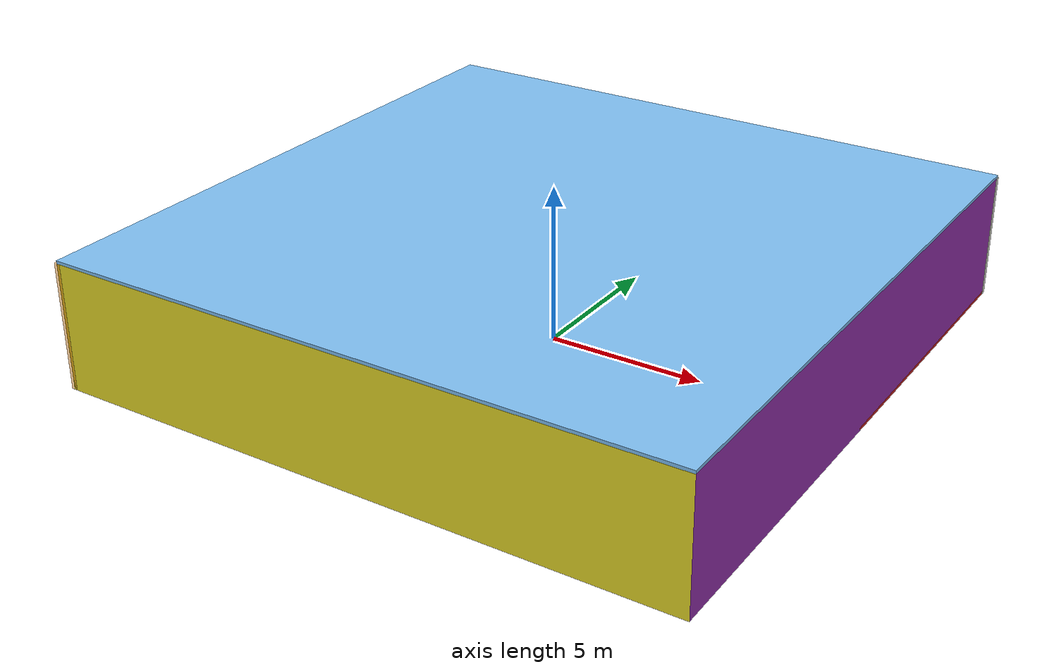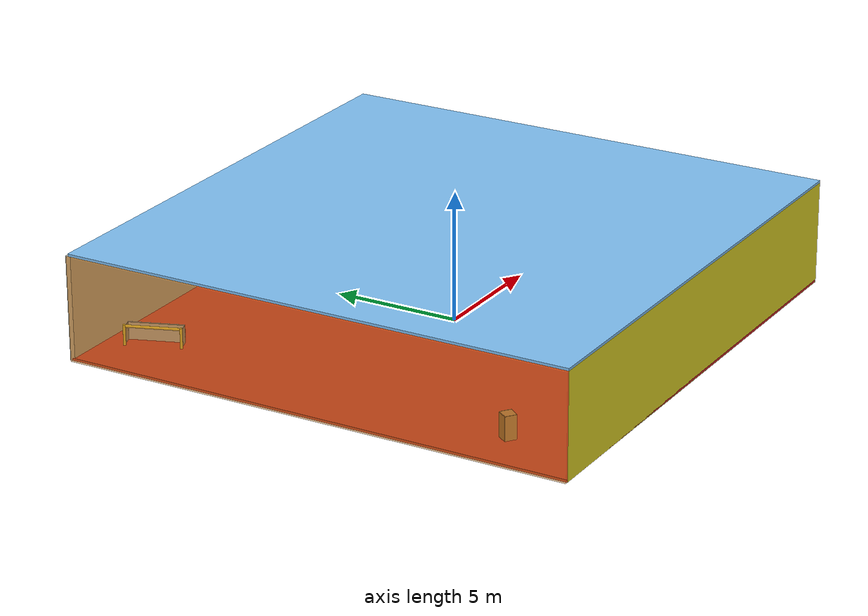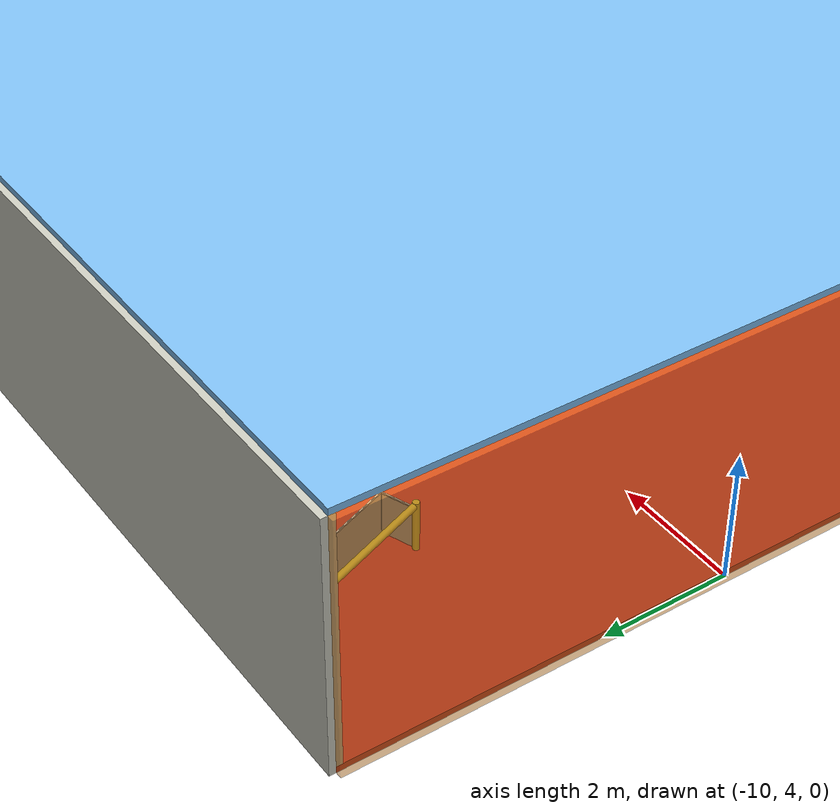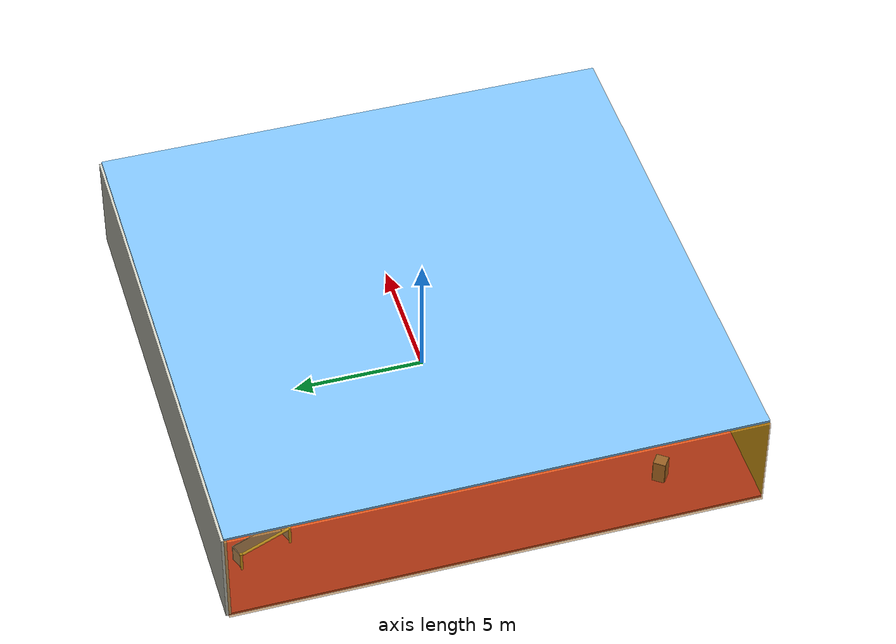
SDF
<sdf version="1.4">
 <world name="default">
  <physics type="ode">
   <max_step_size>0.001</max_step_size>
   <real_time_factor>1</real_time_factor>
   <real_time_update_rate>1000</real_time_update_rate>
   <gravity>0 0 -9.8</gravity>
  </physics>
  <scene><ambient>0.4 0.4 0.4 1</ambient><background>0.7 0.7 0.7 1</background><shadows>1</shadows></scene>
  <model name="Surrounding">
   <static>1</static>
   <link name="Ceiling">
    <collision name="Ceiling_Collision"><geometry><box><size>20 20 0.1</size></box></geometry></collision>
    <visual name="Ceiling_Visual">
     <geometry><box><size>20 20 0.1</size></box></geometry>
     <material>
      <script><uri>file://media/materials/scripts/gazebo.material</uri><name>Gazebo/SkyBlue</name></script>
     </material>
    </visual>
    <pose>0 0 4.05 0 0 0</pose>
   </link>
   <link name="Wall_South">
    <collision name="Wall_South_Collision">
     <geometry><box><size>20 0 4</size></box></geometry>
     <pose>0 0 2 0 -0 0</pose>
    </collision>
    <visual name="Wall_South_Visual">
     <pose>0 0 2 0 -0 0</pose>
     <geometry><box><size>20 0 4</size></box></geometry>
     <material>
      <script><uri>file://media/materials/scripts/gazebo.material</uri><name>Gazebo/Yellow</name></script>
     </material>
    </visual>
    <velocity_decay><linear>0</linear><angular>0</angular></velocity_decay>
    <pose>0 -10 0 0 -0 0</pose>
   </link>
   <link name="Wall_East">
    <collision name="Wall_21_Collision">
     <geometry><box><size>20 0 4</size></box></geometry>
     <pose>0 0 2 0 -0 0</pose>
    </collision>
    <visual name="Wall_21_Visual">
     <pose>0 0 2 0 -0 0</pose>
     <geometry><box><size>20 0 4</size></box></geometry>
     <material>
      <script><uri>file://media/materials/scripts/gazebo.material</uri><name>Gazebo/PurpleGlow</name></script>
     </material>
    </visual>
    <velocity_decay><linear>0</linear><angular>0</angular></velocity_decay>
    <pose>10 0 0 0 -0 1.5708</pose>
   </link>
   <link name="Wall_North">
    <collision name="Wall_22_Collision">
     <geometry><box><size>20 0.2 4</size></box></geometry>
     <pose>0 0 2 0 -0 0</pose>
    </collision>
    <visual name="Wall_22_Visual">
     <pose>0 0 2 0 -0 0</pose>
     <geometry><box><size>20 0.2 4</size></box></geometry>
     <material>
      <script><uri>file://media/materials/scripts/gazebo.material</uri><name>Gazebo/PaintedWall</name></script>
     </material>
    </visual>
    <velocity_decay><linear>0</linear><angular>0</angular></velocity_decay>
    <pose>0 10 0 0 -0 0</pose>
   </link>
   <link name="Wall_West">
    <collision name="Wall_23_Collision">
     <geometry><box><size>20 0.2 4</size></box></geometry>
     <pose>0 0 2 0 -0 0</pose>
    </collision>
    <visual name="Wall_23_Visual">
     <pose>0 0 2 0 -0 0</pose>
     <geometry><box><size>20 0.2 4</size></box></geometry>
     <material>
      <script>
       <uri>file://media/materials/scripts/gazebo.material</uri>
       <name>Gazebo/OrangeTransparent</name>
      </script>
     </material>
    </visual>
    <velocity_decay><linear>0</linear><angular>0</angular></velocity_decay>
    <pose>-10 0 0 0 0 -1.5708</pose>
   </link>
   <link name="Ground_link">
    <collision name="collision">
     <pose>0 0 .05 0 -0 0</pose>
     <geometry><box><size>20 20 0.1</size></box></geometry>
    </collision>
    <visual name="visual">
     <pose>0 0 .05 0 -0 0</pose>
     <geometry><box><size>20 20 0.1</size></box></geometry>
     <material>
      <script><uri>file://media/materials/scripts/gazebo.material</uri><name>Gazebo/RedGlow</name></script>
     </material>
    </visual>
   </link>
   <static>1</static>
  </model>
  <spherical_coordinates>
   <surface_model>EARTH_WGS84</surface_model>
   <latitude_deg>0</latitude_deg>
   <longitude_deg>0</longitude_deg>
   <elevation>0</elevation>
   <heading_deg>0</heading_deg>
  </spherical_coordinates>
  <light name="lightball_0" type="diffuse">
   <diffuse>0.8 0.8 0.8 1</diffuse>
   <specular>0.2 0.2 0.2 1</specular>
   <attenuation>
    <range>100</range>
    <constant>0.7</constant>
    <linear>0.01</linear>
    <quadratic>0.001</quadratic>
   </attenuation>
   <direction>-0.5 0.1 -0.9</direction>
   <pose>3.0337023863 -3.57219949909 2.36994010567 0 0 0</pose>
  </light>
  <light name="lightball_1" type="diffuse">
   <diffuse>0.8 0.8 0.8 1</diffuse>
   <specular>0.2 0.2 0.2 1</specular>
   <attenuation>
    <range>100</range>
    <constant>0.7</constant>
    <linear>0.01</linear>
    <quadratic>0.001</quadratic>
   </attenuation>
   <direction>-0.5 0.1 -0.9</direction>
   <pose>-5.52729497936 9.5893725143 2.87252874271 0 0 0</pose>
  </light>
  <light name="lightball_2" type="diffuse">
   <diffuse>0.8 0.8 0.8 1</diffuse>
   <specular>0.2 0.2 0.2 1</specular>
   <attenuation>
    <range>100</range>
    <constant>0.7</constant>
    <linear>0.01</linear>
    <quadratic>0.001</quadratic>
   </attenuation>
   <direction>-0.5 0.1 -0.9</direction>
   <pose>2.2619710281 -4.76720985842 0.790946564178 0 0 0</pose>
  </light>
  <light name="lightball_3" type="diffuse">
   <diffuse>0.8 0.8 0.8 1</diffuse>
   <specular>0.2 0.2 0.2 1</specular>
   <attenuation>
    <range>100</range>
    <constant>0.7</constant>
    <linear>0.01</linear>
    <quadratic>0.001</quadratic>
   </attenuation>
   <direction>-0.5 0.1 -0.9</direction>
   <pose>-2.34306392307 -3.66165277192 2.21661927944 0 0 0</pose>
  </light>
  <light name="lightball_4" type="diffuse">
   <diffuse>0.8 0.8 0.8 1</diffuse>
   <specular>0.2 0.2 0.2 1</specular>
   <attenuation>
    <range>100</range>
    <constant>0.7</constant>
    <linear>0.01</linear>
    <quadratic>0.001</quadratic>
   </attenuation>
   <direction>-0.5 0.1 -0.9</direction>
   <pose>1.48796182923 9.49133864271 2.45561989913 0 0 0</pose>
  </light>
  <light name="lightball_5" type="diffuse">
   <diffuse>0.8 0.8 0.8 1</diffuse>
   <specular>0.2 0.2 0.2 1</specular>
   <attenuation>
    <range>100</range>
    <constant>0.7</constant>
    <linear>0.01</linear>
    <quadratic>0.001</quadratic>
   </attenuation>
   <direction>-0.5 0.1 -0.9</direction>
   <pose>-6.1392224588 4.35477330142 3.38184089092 0 0 0</pose>
  </light>
  <light name="lightball_6" type="diffuse">
   <diffuse>0.8 0.8 0.8 1</diffuse>
   <specular>0.2 0.2 0.2 1</specular>
   <attenuation>
    <range>100</range>
    <constant>0.7</constant>
    <linear>0.01</linear>
    <quadratic>0.001</quadratic>
   </attenuation>
   <direction>-0.5 0.1 -0.9</direction>
   <pose>-3.47151673937 0.147501327598 3.39308559974 0 0 0</pose>
  </light>
  <light name="lightball_7" type="diffuse">
   <diffuse>0.8 0.8 0.8 1</diffuse>
   <specular>0.2 0.2 0.2 1</specular>
   <attenuation>
    <range>100</range>
    <constant>0.7</constant>
    <linear>0.01</linear>
    <quadratic>0.001</quadratic>
   </attenuation>
   <direction>-0.5 0.1 -0.9</direction>
   <pose>3.61615056441 6.21845642164 2.86385396945 0 0 0</pose>
  </light>
  <light name="lightball_8" type="diffuse">
   <diffuse>0.8 0.8 0.8 1</diffuse>
   <specular>0.2 0.2 0.2 1</specular>
   <attenuation>
    <range>100</range>
    <constant>0.7</constant>
    <linear>0.01</linear>
    <quadratic>0.001</quadratic>
   </attenuation>
   <direction>-0.5 0.1 -0.9</direction>
   <pose>-9.55783520764 4.7122285363 2.27511576205 0 0 0</pose>
  </light>
  <light name="lightball_9" type="diffuse">
   <diffuse>0.8 0.8 0.8 1</diffuse>
   <specular>0.2 0.2 0.2 1</specular>
   <attenuation>
    <range>100</range>
    <constant>0.7</constant>
    <linear>0.01</linear>
    <quadratic>0.001</quadratic>
   </attenuation>
   <direction>-0.5 0.1 -0.9</direction>
   <pose>-4.87368537962 7.6759939163 3.89272031993 0 0 0</pose>
  </light>
  <include><uri>model://cabinet</uri><pose>-8.11786339047 -6.72978884022 0 0 0 2.50811325276</pose></include>
  <include>
   <uri>model://robocup_3Dsim_goal</uri>
   <pose>-7.75908431539 8.06936051973 0 0 0 0.359115631912</pose>
  </include>
  <include><uri>model://cabinet</uri><pose>-1.81048591875 -4.93436033019 0 0 0 2.31821390163</pose></include>
  <include><uri>model://cabinet</uri><pose>1.75295499674 -1.40017095269 0 0 0 1.2486753838</pose></include>
  <include><uri>model://cabinet</uri><pose>3.79676398409 -4.22690884713 0 0 0 2.09671690075</pose></include>
 </world>
</sdf>

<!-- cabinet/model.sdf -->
<sdf version="1.5">
  <model name="cabinet">
    <static>true</static>
    <link name="cabinet_bottom_plate">
      <inertial>
        <pose>0 0 -1 0 0 0</pose>
        <inertia>
          <ixx>2.050000</ixx>
          <ixy>0</ixy>
          <ixz>0</ixz>
          <iyy>2.050000</iyy>
          <iyz>0</iyz>
          <izz>2.050000</izz>
        </inertia>
        <mass>25.000000</mass>
      </inertial>
      <collision name="cabinet_bottom_plate_geom">
        <pose>0 0 0.010000 0 0 0</pose>
        <geometry>
          <box>
            <size>0.450000 0.450000 0.020000</size>
          </box>
        </geometry>
      </collision>
      <visual name="cabinet_bottom_plate_geom_visual">
        <pose>0 0 0.010000 0 0 0</pose>
        <geometry>
          <box>
            <size>0.450000 0.450000 0.020000</size>
          </box>
        </geometry>
        <material>
          <script>
            <uri>model://media/materials/scripts/gazebo.material</uri>
            <name>Gazebo/Wood</name>
          </script>
        </material>
      </visual>
      <collision name="cabinet_bottom_plate_geom_cabinet_back_plate">
        <pose>0.235000 0 0.510000 0 0 0</pose>
        <geometry>
          <box>
            <size>0.020000 0.450000 1.020000</size>
          </box>
        </geometry>
      </collision>
      <visual name="cabinet_bottom_plate_geom_cabinet_back_plate_visual">
        <pose>0.235000 0 0.510000 0 0 0</pose>
        <geometry>
          <box>
            <size>0.020000 0.450000 1.020000</size>
          </box>
        </geometry>
        <material>
          <script>
            <uri>model://media/materials/scripts/gazebo.material</uri>
            <name>Gazebo/Wood</name>
          </script>
        </material>
      </visual>
      <collision name="cabinet_bottom_plate_geom_cabinet_left_plate">
        <pose>0 0.235000 0.510000 0 0 0</pose>
        <geometry>
          <box>
            <size>0.450000 0.020000 1.020000</size>
          </box>
        </geometry>
      </collision>
      <visual name="cabinet_bottom_plate_geom_cabinet_left_plate_visual">
        <pose>0 0.235000 0.510000 0 0 0</pose>
        <geometry>
          <box>
            <size>0.450000 0.020000 1.020000</size>
          </box>
        </geometry>
        <material>
          <script>
            <uri>model://media/materials/scripts/gazebo.material</uri>
            <name>Gazebo/Wood</name>
          </script>
        </material>
      </visual>
      <collision name="cabinet_bottom_plate_geom_cabinet_middle_plate">
        <pose>0 0 0.510000 0 0 0</pose>
        <geometry>
          <box>
            <size>0.450000 0.450000 0.020000</size>
          </box>
        </geometry>
      </collision>
      <visual name="cabinet_bottom_plate_geom_cabinet_middle_plate_visual">
        <pose>0 0 0.510000 0 0 0</pose>
        <geometry>
          <box>
            <size>0.450000 0.450000 0.020000</size>
          </box>
        </geometry>
        <material>
          <script>
            <uri>model://media/materials/scripts/gazebo.material</uri>
            <name>Gazebo/Wood</name>
          </script>
        </material>
      </visual>
      <collision name="cabinet_bottom_plate_geom_cabinet_right_plate">
        <pose>0 -0.235000 0.510000 0 0 0</pose>
        <geometry>
          <box>
            <size>0.450000 0.020000 1.020000</size>
          </box>
        </geometry>
      </collision>
      <visual name="cabinet_bottom_plate_geom_cabinet_right_plate_visual">
        <pose>0 -0.235000 0.510000 0 0 0</pose>
        <geometry>
          <box>
            <size>0.450000 0.020000 1.020000</size>
          </box>
        </geometry>
        <material>
          <script>
            <uri>model://media/materials/scripts/gazebo.material</uri>
            <name>Gazebo/Wood</name>
          </script>
        </material>
      </visual>
      <collision name="cabinet_bottom_plate_geom_cabinet_top_plate">
        <pose>0 0 1.010000 0 0 0</pose>
        <geometry>
          <box>
            <size>0.450000 0.450000 0.020000</size>
          </box>
        </geometry>
      </collision>
      <visual name="cabinet_bottom_plate_geom_cabinet_top_plate_visual">
        <pose>0 0 1.010000 0 0 0</pose>
        <geometry>
          <box>
            <size>0.450000 0.450000 0.020000</size>
          </box>
        </geometry>
        <material>
          <script>
            <uri>model://media/materials/scripts/gazebo.material</uri>
            <name>Gazebo/Wood</name>
          </script>
        </material>
      </visual>
    </link>
  </model>
</sdf>

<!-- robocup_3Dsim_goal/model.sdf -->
<sdf version="1.5">
  <model name="robocup_3d_goal">
    <static>true</static>
    <link name="left_post">
      <pose>0 1.05 0.45 0 0 0</pose>
      <collision name="collision">
        <geometry>
          <cylinder>
            <radius>0.05</radius>
            <length>0.9</length>
          </cylinder>
        </geometry>
      </collision>
      <visual name="visual">
        <geometry>
          <cylinder>
            <radius>0.05</radius>
            <length>0.9</length>
          </cylinder>
        </geometry>
        <material>
          <script>
            <uri>file://media/materials/scripts/gazebo.material</uri>
            <name>Gazebo/ZincYellow</name>
          </script>
        </material>
      </visual>
    </link>
    <link name="left_support_horiz_lower">
      <pose>0.30 1.05 0.01 0 0 0</pose>
      <collision name="collision">
        <geometry>
          <box>
            <size>0.50 0.02 0.02</size>
          </box>
        </geometry>
      </collision>
      <visual name="visual">
        <geometry>
          <box>
            <size>0.50 0.02 0.02</size>
          </box>
        </geometry>
        <material>
          <script>
            <uri>file://media/materials/scripts/gazebo.material</uri>
            <name>Gazebo/White</name>
          </script>
        </material>
      </visual>
    </link>
    <link name="left_support_horiz_upper">
      <pose>0.30 1.05 0.79 0 0 0</pose>
      <collision name="collision">
        <geometry>
          <box>
            <size>0.50 0.02 0.02</size>
          </box>
        </geometry>
      </collision>
      <visual name="visual">
        <geometry>
          <box>
            <size>0.50 0.02 0.02</size>
          </box>
        </geometry>
        <material>
          <script>
            <uri>file://media/materials/scripts/gazebo.material</uri>
            <name>Gazebo/White</name>
          </script>
        </material>
      </visual>
    </link>
    <link name="left_support_vertical">
      <pose>0.56 1.05 0.4 0 1.5708 0</pose>
      <collision name="collision">
        <geometry>
          <box>
            <size>0.80 0.02 0.02</size>
          </box>
        </geometry>
      </collision>
      <visual name="visual">
        <geometry>
          <box>
            <size>0.80 0.02 0.02</size>
          </box>
        </geometry>
        <material>
          <script>
            <uri>file://media/materials/scripts/gazebo.material</uri>
            <name>Gazebo/White</name>
          </script>
        </material>
      </visual>
    </link>
    <link name="right_support_horiz_lower">
      <pose>0.30 -1.05 0.01 0 0 0</pose>
      <collision name="collision">
        <geometry>
          <box>
            <size>0.50 0.02 0.02</size>
          </box>
        </geometry>
      </collision>
      <visual name="visual">
        <geometry>
          <box>
            <size>0.50 0.02 0.02</size>
          </box>
        </geometry>
        <material>
          <script>
            <uri>file://media/materials/scripts/gazebo.material</uri>
            <name>Gazebo/White</name>
          </script>
        </material>
      </visual>
    </link>
    <link name="right_support_horiz_upper">
      <pose>0.30 -1.05 0.79 0 0 0</pose>
      <collision name="collision">
        <geometry>
          <box>
            <size>0.50 0.02 0.02</size>
          </box>
        </geometry>
      </collision>
      <visual name="visual">
        <geometry>
          <box>
            <size>0.50 0.02 0.02</size>
          </box>
        </geometry>
        <material>
          <script>
            <uri>file://media/materials/scripts/gazebo.material</uri>
            <name>Gazebo/White</name>
          </script>
        </material>
      </visual>
    </link>
    <link name="right_support_vertical">
      <pose>0.56 -1.05 0.4 0 1.5708 0</pose>
      <collision name="collision">
        <geometry>
          <box>
            <size>0.80 0.02 0.02</size>
          </box>
        </geometry>
      </collision>
      <visual name="visual">
        <geometry>
          <box>
            <size>0.80 0.02 0.02</size>
          </box>
        </geometry>
        <material>
          <script>
            <uri>file://media/materials/scripts/gazebo.material</uri>
            <name>Gazebo/White</name>
          </script>
        </material>
      </visual>
    </link>
    <link name="center_support_horiz_lower">
      <pose>0.56 0 0.01 0 1.5708 0</pose>
      <collision name="collision">
        <geometry>
          <box>
            <size>0.02 2.08 0.02</size>
          </box>
        </geometry>
      </collision>
      <visual name="visual">
        <geometry>
          <box>
            <size>0.02 2.08 0.02</size>
          </box>
        </geometry>
        <material>
          <script>
            <uri>file://media/materials/scripts/gazebo.material</uri>
            <name>Gazebo/White</name>
          </script>
        </material>
      </visual>
    </link>
    <link name="center_support_horiz_upper">
      <pose>0.56 0 0.79 0 1.5708 0</pose>
      <collision name="collision">
        <geometry>
          <box>
            <size>0.02 2.08 0.02</size>
          </box>
        </geometry>
      </collision>
      <visual name="visual">
        <geometry>
          <box>
            <size>0.02 2.08 0.02</size>
          </box>
        </geometry>
        <material>
          <script>
            <uri>file://media/materials/scripts/gazebo.material</uri>
            <name>Gazebo/White</name>
          </script>
        </material>
      </visual>
    </link>
    <link name="right_post">
      <pose>0 -1.05 0.45 0 0 0</pose>
      <collision name="collision">
        <geometry>
          <cylinder>
            <radius>0.05</radius>
            <length>0.9</length>
          </cylinder>
        </geometry>
      </collision>
      <visual name="visual">
        <geometry>
          <cylinder>
            <radius>0.05</radius>
            <length>0.9</length>
          </cylinder>
        </geometry>
        <material>
          <script>
            <uri>file://media/materials/scripts/gazebo.material</uri>
            <name>Gazebo/ZincYellow</name>
          </script>
        </material>
      </visual>
    </link>
    <link name="crossbar">
      <pose>0 0 0.85 1.57 1.57 0</pose>
      <collision name="collision">
        <geometry>
          <cylinder>
            <radius>0.05</radius>
            <length>2.0</length>
          </cylinder>
        </geometry>
      </collision>
      <visual name="visual">
        <geometry>
          <cylinder>
            <radius>0.05</radius>
            <length>2.0</length>
          </cylinder>
        </geometry>
        <material>
          <script>
            <uri>file://media/materials/scripts/gazebo.material</uri>
            <name>Gazebo/ZincYellow</name>
          </script>
        </material>
      </visual>
    </link>
    <link name="center_net">
      <pose>0.56 0 0.40 0 0 0</pose>
      <collision name="collision">
        <geometry>
          <box>
            <size>0.01 2.1 0.80</size>
          </box>
        </geometry>
      </collision>
      <visual name="visual">
        <geometry>
          <box>
            <size>0.01 2.1 0.80</size>
          </box>
        </geometry>
        <material>
          <script>
            <uri>model://../model_source/models/robocup09_spl_field/materials/scripts/</uri>
            <uri>model://../model_source/models/robocup09_spl_field/materials/textures/</uri>
            <name>RoboCup/Net</name>
          </script>
        </material>
      </visual>
    </link>
    <link name="left_net">
      <pose>0.30 1.05 0.40 0 0 0</pose>
      <collision name="collision">
        <geometry>
          <box>
            <size>0.50 0.01 0.76</size>
          </box>
        </geometry>
      </collision>
      <visual name="visual">
        <geometry>
          <box>
            <size>0.50 0.01 0.76</size>
          </box>
        </geometry>
        <material>
          <script>
            <uri>model://../model_source/models/robocup09_spl_field/materials/scripts/</uri>
            <uri>model://../model_source/models/robocup09_spl_field/materials/textures/</uri>
            <name>RoboCup/Net</name>
          </script>
        </material>
      </visual>
    </link>
    <link name="right_net">
      <pose>0.30 -1.05 0.40 0 0 0</pose>
      <collision name="collision">
        <geometry>
          <box>
            <size>0.50 0.01 0.76</size>
          </box>
        </geometry>
      </collision>
      <visual name="visual">
        <geometry>
          <box>
            <size>0.50 0.01 0.76</size>
          </box>
        </geometry>
        <material>
          <script>
            <uri>model://../model_source/models/robocup09_spl_field/materials/scripts/</uri>
            <uri>model://../model_source/models/robocup09_spl_field/materials/textures/</uri>
            <name>RoboCup/Net</name>
          </script>
        </material>
      </visual>
    </link>
  </model>
</sdf>
